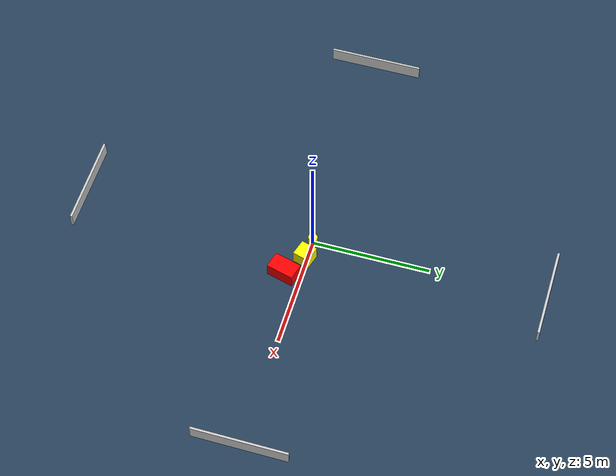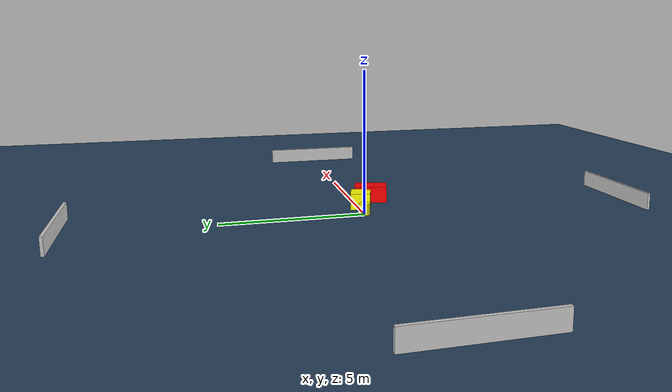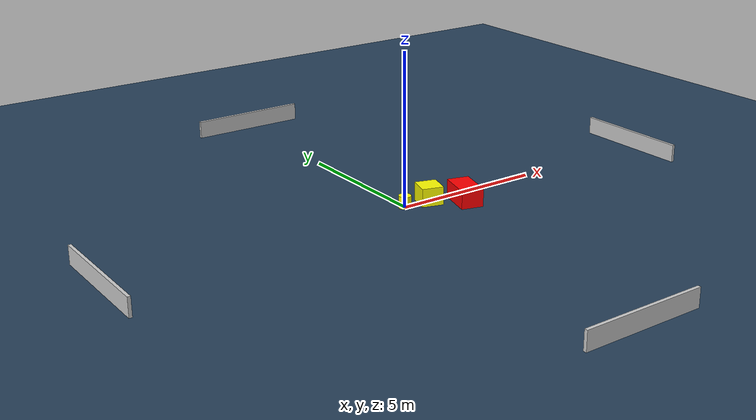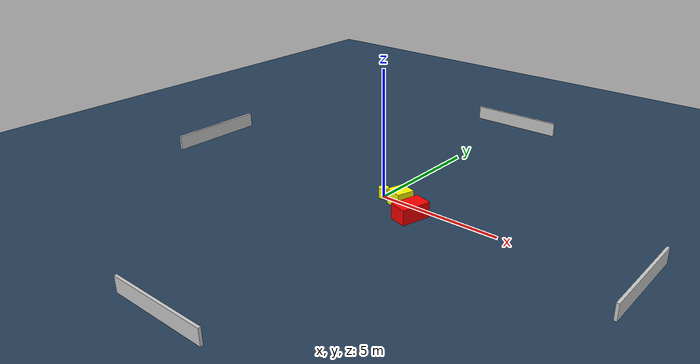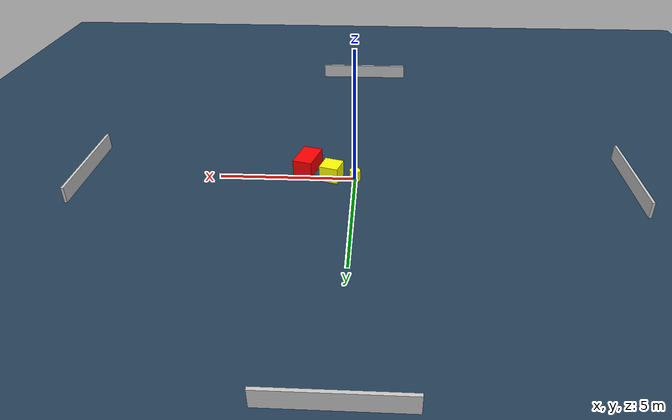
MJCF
<?xml version="1.0" ?>
<mujoco model="generated_environment">
  <option timestep="0.01" integrator="RK4" cone="elliptic"/>
  <default>
    <geom density="1"/>
  </default>
  <asset>
    <texture builtin="gradient" height="3072" name="skybox" rgb1="0.3 0.5 0.7" rgb2="0 0 0" type="skybox" width="512"/>
    <texture builtin="checker" height="300" name="groundplane" rgb1="0.2 0.3 0.4" rgb2="0.1 0.2 0.3" type="2d" width="300"/>
    <material name="groundplane" reflectance="0.2" texrepeat="5 5" texture="groundplane"/>
  </asset>
  <worldbody>
    <light dir="0 0 -1" directional="true" pos="0 0 1.5"/>
    <geom condim="3" friction="0.5 0.005 0.001" material="groundplane" name="floor" pos="0 0 0" size="0 0 0.05" type="plane"/>
    <body name="walls">
      <geom name="wall_1" condim="4" pos="-10.0 0.0 0.3" rgba="0.800000011920929 0.800000011920929 0.800000011920929 1.0" size="0.05 2.0 0.3" type="box"/>
      <geom name="wall_2" condim="4" pos="10.0 0.0 0.3" rgba="0.800000011920929 0.800000011920929 0.800000011920929 1.0" size="0.05 2.0 0.3" type="box"/>
      <geom name="wall_3" condim="4" pos="0.0 -10.0 0.3" rgba="0.800000011920929 0.800000011920929 0.800000011920929 1.0" size="2.0 0.05 0.3" type="box"/>
      <geom name="wall_4" condim="4" pos="0.0 10.0 0.3" rgba="0.800000011920929 0.800000011920929 0.800000011920929 1.0" size="2.0 0.05 0.3" type="box"/>
    </body>
    <body name="robot">
      <joint name="joint_x" type="slide" pos="0 0 0" axis="1 0 0"/>
      <joint name="joint_y" type="slide" pos="0 0 0" axis="0 1 0"/>
      <geom name="robot" type="cylinder" pos="0.0 0.0 0.2" size="0.2 0.2 0.0" mass="5.0" friction="1.0 0.005 0.0001" condim="4" rgba="1.0 1.0 0.0 1.0"/>
    </body>
    <body name="obstacle_1_movable">
      <geom name="obstacle_1_movable" condim="4" pos="0.8731132164915577 -0.08724787454632774 0.3" euler="0 0 73.65205377085175" friction="0.0 0.005 0.001" rgba="1.0 1.0 0.0 1.0" size="0.3531617136622368 0.3538165381434152 0.3" type="box" mass="0.1"/>
      <joint type="free"/>
    </body>
    <body name="obstacle_2_static">
      <geom name="obstacle_2_static" condim="4" pos="1.8196639041552025 -0.712779425706859 0.3" euler="0 0 164.9523794210726" friction="0.0 0.005 0.001" rgba="1.0 0.0 0.0 1.0" size="0.3650282194146731 0.5927470176721028 0.3" type="box"/>
    </body>
  </worldbody>
  <actuator>
    <motor name="actuator_x" joint="joint_x" gear="1" ctrlrange="-1 1"/>
    <motor name="actuator_y" joint="joint_y" gear="1" ctrlrange="-1 1"/>
  </actuator>
</mujoco>
